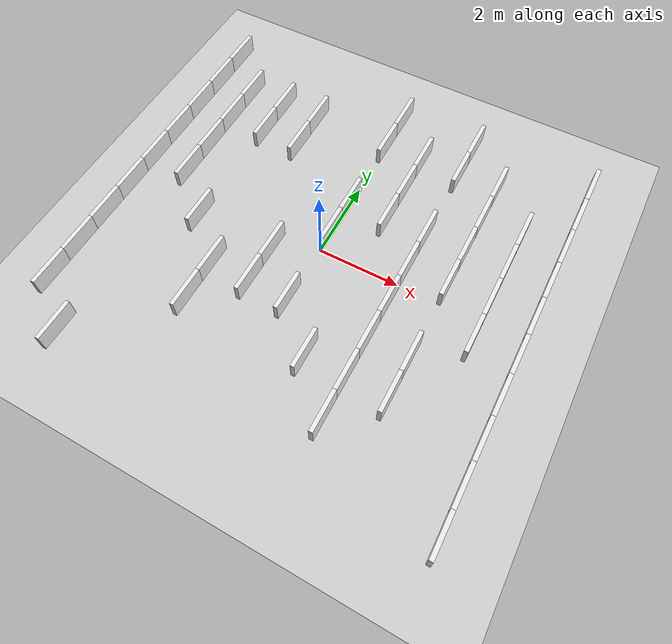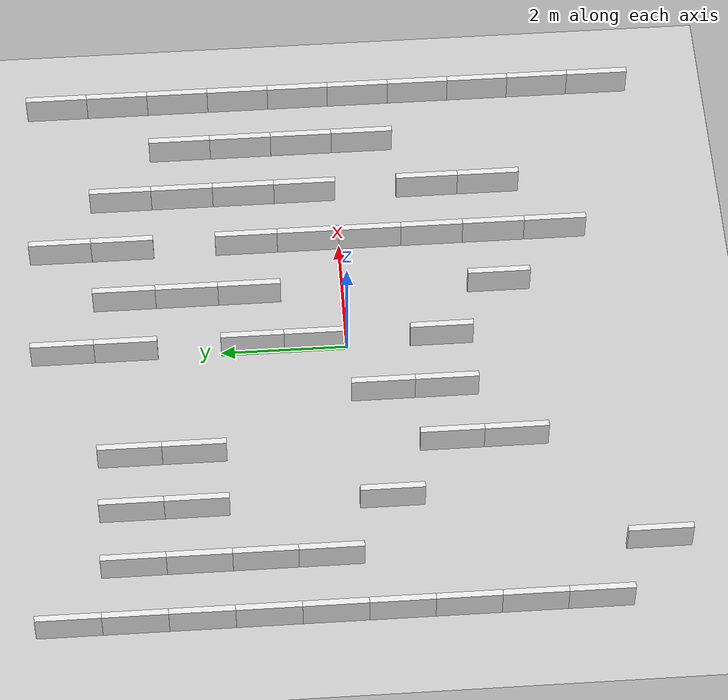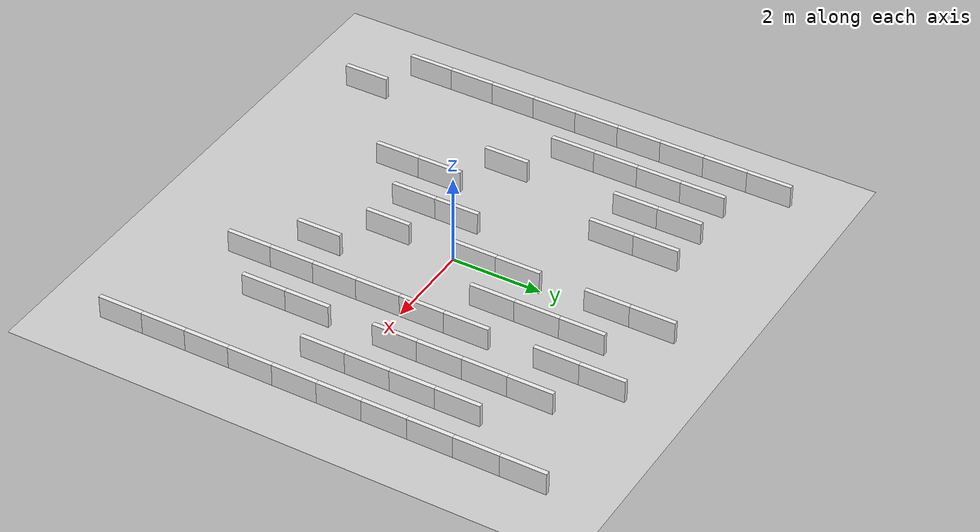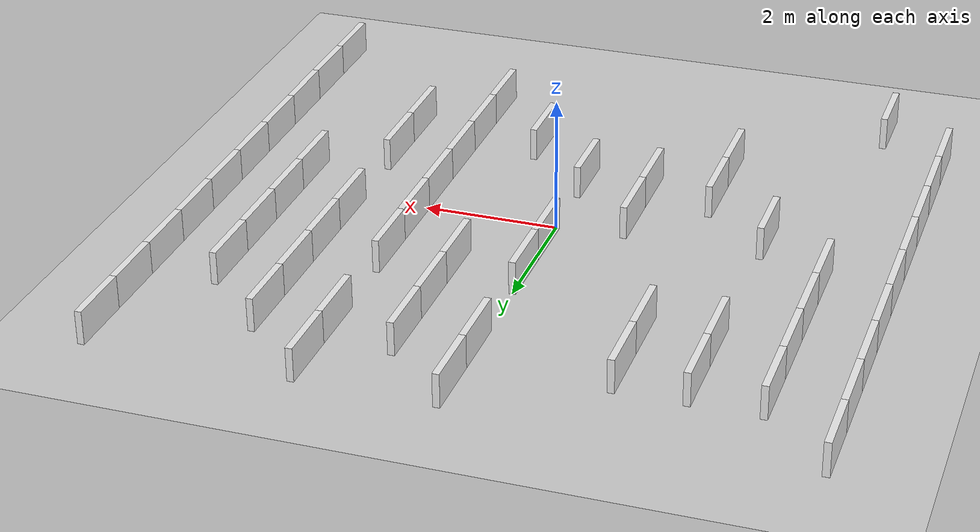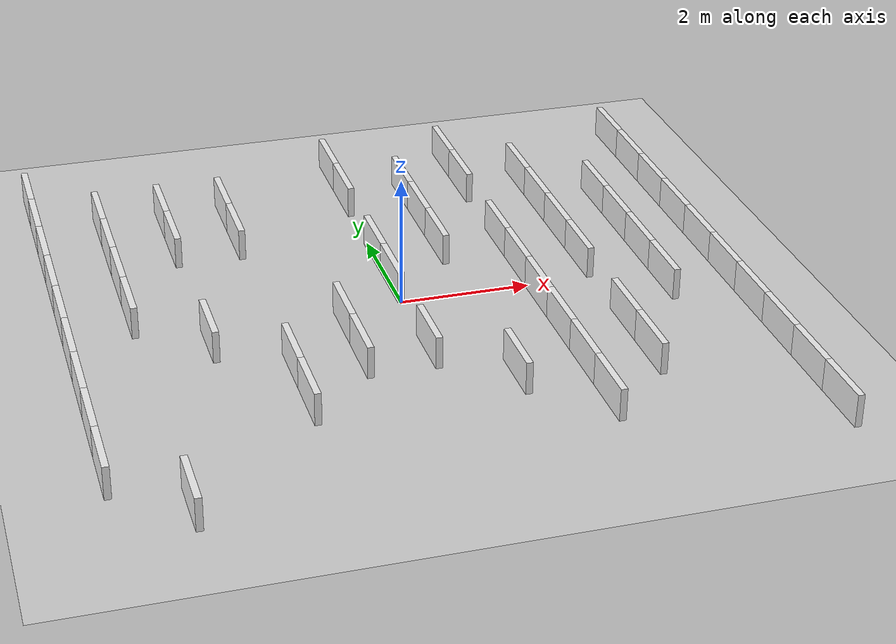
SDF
<sdf version="1.7">
 <world name="default">
  <model name="ground_plane">
   <static>1</static>
   <link name="link">
    <collision name="collision">
     <geometry><plane><normal>0 0 1</normal><size>100 100</size></plane></geometry>
     <surface><friction><ode><mu>100</mu><mu2>50</mu2></ode></friction></surface>
    </collision>
    <visual name="visual">
     <cast_shadows>0</cast_shadows>
     <geometry><plane><normal>0 0 1</normal><size>100 100</size></plane></geometry>
     <material>
      <script><uri>file://media/materials/scripts/gazebo.material</uri><name>Gazebo/Grey</name></script>
     </material>
    </visual>
   </link>
  </model>
  <model name="wall_-4_-4.5">
   <link name="wall_link_-4_-4.5">
    <collision name="wall_collision_-4_-4.5"><geometry><box><size>1 0.1 0.5</size></box></geometry></collision>
    <visual name="wall_visual_-4_-4.5">
     <geometry><box><size>1 0.1 0.5</size></box></geometry>
     <material>
      <script><uri>file://media/materials/scripts/gazebo.material</uri><name>Gazebo/White</name></script>
     </material>
    </visual>
    <pose>-4 -4.5 0.25 0 0 1.5707963267948966</pose>
   </link>
   <static>true</static>
  </model>
  <model name="wall_5_-4.5">
   <link name="wall_link_5_-4.5">
    <collision name="wall_collision_5_-4.5"><geometry><box><size>1 0.1 0.5</size></box></geometry></collision>
    <visual name="wall_visual_5_-4.5">
     <geometry><box><size>1 0.1 0.5</size></box></geometry>
     <material>
      <script><uri>file://media/materials/scripts/gazebo.material</uri><name>Gazebo/White</name></script>
     </material>
    </visual>
    <pose>5 -4.5 0.25 0 0 1.5707963267948966</pose>
   </link>
   <static>true</static>
  </model>
  <model name="wall_-5_-3.5">
   <link name="wall_link_-5_-3.5">
    <collision name="wall_collision_-5_-3.5"><geometry><box><size>1 0.1 0.5</size></box></geometry></collision>
    <visual name="wall_visual_-5_-3.5">
     <geometry><box><size>1 0.1 0.5</size></box></geometry>
     <material>
      <script><uri>file://media/materials/scripts/gazebo.material</uri><name>Gazebo/White</name></script>
     </material>
    </visual>
    <pose>-5 -3.5 0.25 0 0 1.5707963267948966</pose>
   </link>
   <static>true</static>
  </model>
  <model name="wall_2_-3.5">
   <link name="wall_link_2_-3.5">
    <collision name="wall_collision_2_-3.5"><geometry><box><size>1 0.1 0.5</size></box></geometry></collision>
    <visual name="wall_visual_2_-3.5">
     <geometry><box><size>1 0.1 0.5</size></box></geometry>
     <material>
      <script><uri>file://media/materials/scripts/gazebo.material</uri><name>Gazebo/White</name></script>
     </material>
    </visual>
    <pose>2 -3.5 0.25 0 0 1.5707963267948966</pose>
   </link>
   <static>true</static>
  </model>
  <model name="wall_5_-3.5">
   <link name="wall_link_5_-3.5">
    <collision name="wall_collision_5_-3.5"><geometry><box><size>1 0.1 0.5</size></box></geometry></collision>
    <visual name="wall_visual_5_-3.5">
     <geometry><box><size>1 0.1 0.5</size></box></geometry>
     <material>
      <script><uri>file://media/materials/scripts/gazebo.material</uri><name>Gazebo/White</name></script>
     </material>
    </visual>
    <pose>5 -3.5 0.25 0 0 1.5707963267948966</pose>
   </link>
   <static>true</static>
  </model>
  <model name="wall_-5_-2.5">
   <link name="wall_link_-5_-2.5">
    <collision name="wall_collision_-5_-2.5"><geometry><box><size>1 0.1 0.5</size></box></geometry></collision>
    <visual name="wall_visual_-5_-2.5">
     <geometry><box><size>1 0.1 0.5</size></box></geometry>
     <material>
      <script><uri>file://media/materials/scripts/gazebo.material</uri><name>Gazebo/White</name></script>
     </material>
    </visual>
    <pose>-5 -2.5 0.25 0 0 1.5707963267948966</pose>
   </link>
   <static>true</static>
  </model>
  <model name="wall_-2_-2.5">
   <link name="wall_link_-2_-2.5">
    <collision name="wall_collision_-2_-2.5"><geometry><box><size>1 0.1 0.5</size></box></geometry></collision>
    <visual name="wall_visual_-2_-2.5">
     <geometry><box><size>1 0.1 0.5</size></box></geometry>
     <material>
      <script><uri>file://media/materials/scripts/gazebo.material</uri><name>Gazebo/White</name></script>
     </material>
    </visual>
    <pose>-2 -2.5 0.25 0 0 1.5707963267948966</pose>
   </link>
   <static>true</static>
  </model>
  <model name="wall_1_-2.5">
   <link name="wall_link_1_-2.5">
    <collision name="wall_collision_1_-2.5"><geometry><box><size>1 0.1 0.5</size></box></geometry></collision>
    <visual name="wall_visual_1_-2.5">
     <geometry><box><size>1 0.1 0.5</size></box></geometry>
     <material>
      <script><uri>file://media/materials/scripts/gazebo.material</uri><name>Gazebo/White</name></script>
     </material>
    </visual>
    <pose>1 -2.5 0.25 0 0 1.5707963267948966</pose>
   </link>
   <static>true</static>
  </model>
  <model name="wall_2_-2.5">
   <link name="wall_link_2_-2.5">
    <collision name="wall_collision_2_-2.5"><geometry><box><size>1 0.1 0.5</size></box></geometry></collision>
    <visual name="wall_visual_2_-2.5">
     <geometry><box><size>1 0.1 0.5</size></box></geometry>
     <material>
      <script><uri>file://media/materials/scripts/gazebo.material</uri><name>Gazebo/White</name></script>
     </material>
    </visual>
    <pose>2 -2.5 0.25 0 0 1.5707963267948966</pose>
   </link>
   <static>true</static>
  </model>
  <model name="wall_3_-2.5">
   <link name="wall_link_3_-2.5">
    <collision name="wall_collision_3_-2.5"><geometry><box><size>1 0.1 0.5</size></box></geometry></collision>
    <visual name="wall_visual_3_-2.5">
     <geometry><box><size>1 0.1 0.5</size></box></geometry>
     <material>
      <script><uri>file://media/materials/scripts/gazebo.material</uri><name>Gazebo/White</name></script>
     </material>
    </visual>
    <pose>3 -2.5 0.25 0 0 1.5707963267948966</pose>
   </link>
   <static>true</static>
  </model>
  <model name="wall_5_-2.5">
   <link name="wall_link_5_-2.5">
    <collision name="wall_collision_5_-2.5"><geometry><box><size>1 0.1 0.5</size></box></geometry></collision>
    <visual name="wall_visual_5_-2.5">
     <geometry><box><size>1 0.1 0.5</size></box></geometry>
     <material>
      <script><uri>file://media/materials/scripts/gazebo.material</uri><name>Gazebo/White</name></script>
     </material>
    </visual>
    <pose>5 -2.5 0.25 0 0 1.5707963267948966</pose>
   </link>
   <static>true</static>
  </model>
  <model name="wall_-5_-1.5">
   <link name="wall_link_-5_-1.5">
    <collision name="wall_collision_-5_-1.5"><geometry><box><size>1 0.1 0.5</size></box></geometry></collision>
    <visual name="wall_visual_-5_-1.5">
     <geometry><box><size>1 0.1 0.5</size></box></geometry>
     <material>
      <script><uri>file://media/materials/scripts/gazebo.material</uri><name>Gazebo/White</name></script>
     </material>
    </visual>
    <pose>-5 -1.5 0.25 0 0 1.5707963267948966</pose>
   </link>
   <static>true</static>
  </model>
  <model name="wall_-2_-1.5">
   <link name="wall_link_-2_-1.5">
    <collision name="wall_collision_-2_-1.5"><geometry><box><size>1 0.1 0.5</size></box></geometry></collision>
    <visual name="wall_visual_-2_-1.5">
     <geometry><box><size>1 0.1 0.5</size></box></geometry>
     <material>
      <script><uri>file://media/materials/scripts/gazebo.material</uri><name>Gazebo/White</name></script>
     </material>
    </visual>
    <pose>-2 -1.5 0.25 0 0 1.5707963267948966</pose>
   </link>
   <static>true</static>
  </model>
  <model name="wall_-1_-1.5">
   <link name="wall_link_-1_-1.5">
    <collision name="wall_collision_-1_-1.5"><geometry><box><size>1 0.1 0.5</size></box></geometry></collision>
    <visual name="wall_visual_-1_-1.5">
     <geometry><box><size>1 0.1 0.5</size></box></geometry>
     <material>
      <script><uri>file://media/materials/scripts/gazebo.material</uri><name>Gazebo/White</name></script>
     </material>
    </visual>
    <pose>-1 -1.5 0.25 0 0 1.5707963267948966</pose>
   </link>
   <static>true</static>
  </model>
  <model name="wall_0_-1.5">
   <link name="wall_link_0_-1.5">
    <collision name="wall_collision_0_-1.5"><geometry><box><size>1 0.1 0.5</size></box></geometry></collision>
    <visual name="wall_visual_0_-1.5">
     <geometry><box><size>1 0.1 0.5</size></box></geometry>
     <material>
      <script><uri>file://media/materials/scripts/gazebo.material</uri><name>Gazebo/White</name></script>
     </material>
    </visual>
    <pose>0 -1.5 0.25 0 0 1.5707963267948966</pose>
   </link>
   <static>true</static>
  </model>
  <model name="wall_2_-1.5">
   <link name="wall_link_2_-1.5">
    <collision name="wall_collision_2_-1.5"><geometry><box><size>1 0.1 0.5</size></box></geometry></collision>
    <visual name="wall_visual_2_-1.5">
     <geometry><box><size>1 0.1 0.5</size></box></geometry>
     <material>
      <script><uri>file://media/materials/scripts/gazebo.material</uri><name>Gazebo/White</name></script>
     </material>
    </visual>
    <pose>2 -1.5 0.25 0 0 1.5707963267948966</pose>
   </link>
   <static>true</static>
  </model>
  <model name="wall_3_-1.5">
   <link name="wall_link_3_-1.5">
    <collision name="wall_collision_3_-1.5"><geometry><box><size>1 0.1 0.5</size></box></geometry></collision>
    <visual name="wall_visual_3_-1.5">
     <geometry><box><size>1 0.1 0.5</size></box></geometry>
     <material>
      <script><uri>file://media/materials/scripts/gazebo.material</uri><name>Gazebo/White</name></script>
     </material>
    </visual>
    <pose>3 -1.5 0.25 0 0 1.5707963267948966</pose>
   </link>
   <static>true</static>
  </model>
  <model name="wall_5_-1.5">
   <link name="wall_link_5_-1.5">
    <collision name="wall_collision_5_-1.5"><geometry><box><size>1 0.1 0.5</size></box></geometry></collision>
    <visual name="wall_visual_5_-1.5">
     <geometry><box><size>1 0.1 0.5</size></box></geometry>
     <material>
      <script><uri>file://media/materials/scripts/gazebo.material</uri><name>Gazebo/White</name></script>
     </material>
    </visual>
    <pose>5 -1.5 0.25 0 0 1.5707963267948966</pose>
   </link>
   <static>true</static>
  </model>
  <model name="wall_-5_-0.5">
   <link name="wall_link_-5_-0.5">
    <collision name="wall_collision_-5_-0.5"><geometry><box><size>1 0.1 0.5</size></box></geometry></collision>
    <visual name="wall_visual_-5_-0.5">
     <geometry><box><size>1 0.1 0.5</size></box></geometry>
     <material>
      <script><uri>file://media/materials/scripts/gazebo.material</uri><name>Gazebo/White</name></script>
     </material>
    </visual>
    <pose>-5 -0.5 0.25 0 0 1.5707963267948966</pose>
   </link>
   <static>true</static>
  </model>
  <model name="wall_-3_-0.5">
   <link name="wall_link_-3_-0.5">
    <collision name="wall_collision_-3_-0.5"><geometry><box><size>1 0.1 0.5</size></box></geometry></collision>
    <visual name="wall_visual_-3_-0.5">
     <geometry><box><size>1 0.1 0.5</size></box></geometry>
     <material>
      <script><uri>file://media/materials/scripts/gazebo.material</uri><name>Gazebo/White</name></script>
     </material>
    </visual>
    <pose>-3 -0.5 0.25 0 0 1.5707963267948966</pose>
   </link>
   <static>true</static>
  </model>
  <model name="wall_-1_-0.5">
   <link name="wall_link_-1_-0.5">
    <collision name="wall_collision_-1_-0.5"><geometry><box><size>1 0.1 0.5</size></box></geometry></collision>
    <visual name="wall_visual_-1_-0.5">
     <geometry><box><size>1 0.1 0.5</size></box></geometry>
     <material>
      <script><uri>file://media/materials/scripts/gazebo.material</uri><name>Gazebo/White</name></script>
     </material>
    </visual>
    <pose>-1 -0.5 0.25 0 0 1.5707963267948966</pose>
   </link>
   <static>true</static>
  </model>
  <model name="wall_2_-0.5">
   <link name="wall_link_2_-0.5">
    <collision name="wall_collision_2_-0.5"><geometry><box><size>1 0.1 0.5</size></box></geometry></collision>
    <visual name="wall_visual_2_-0.5">
     <geometry><box><size>1 0.1 0.5</size></box></geometry>
     <material>
      <script><uri>file://media/materials/scripts/gazebo.material</uri><name>Gazebo/White</name></script>
     </material>
    </visual>
    <pose>2 -0.5 0.25 0 0 1.5707963267948966</pose>
   </link>
   <static>true</static>
  </model>
  <model name="wall_4_-0.5">
   <link name="wall_link_4_-0.5">
    <collision name="wall_collision_4_-0.5"><geometry><box><size>1 0.1 0.5</size></box></geometry></collision>
    <visual name="wall_visual_4_-0.5">
     <geometry><box><size>1 0.1 0.5</size></box></geometry>
     <material>
      <script><uri>file://media/materials/scripts/gazebo.material</uri><name>Gazebo/White</name></script>
     </material>
    </visual>
    <pose>4 -0.5 0.25 0 0 1.5707963267948966</pose>
   </link>
   <static>true</static>
  </model>
  <model name="wall_5_-0.5">
   <link name="wall_link_5_-0.5">
    <collision name="wall_collision_5_-0.5"><geometry><box><size>1 0.1 0.5</size></box></geometry></collision>
    <visual name="wall_visual_5_-0.5">
     <geometry><box><size>1 0.1 0.5</size></box></geometry>
     <material>
      <script><uri>file://media/materials/scripts/gazebo.material</uri><name>Gazebo/White</name></script>
     </material>
    </visual>
    <pose>5 -0.5 0.25 0 0 1.5707963267948966</pose>
   </link>
   <static>true</static>
  </model>
  <model name="wall_-5_0.5">
   <link name="wall_link_-5_0.5">
    <collision name="wall_collision_-5_0.5"><geometry><box><size>1 0.1 0.5</size></box></geometry></collision>
    <visual name="wall_visual_-5_0.5">
     <geometry><box><size>1 0.1 0.5</size></box></geometry>
     <material>
      <script><uri>file://media/materials/scripts/gazebo.material</uri><name>Gazebo/White</name></script>
     </material>
    </visual>
    <pose>-5 0.5 0.25 0 0 1.5707963267948966</pose>
   </link>
   <static>true</static>
  </model>
  <model name="wall_-4_0.5">
   <link name="wall_link_-4_0.5">
    <collision name="wall_collision_-4_0.5"><geometry><box><size>1 0.1 0.5</size></box></geometry></collision>
    <visual name="wall_visual_-4_0.5">
     <geometry><box><size>1 0.1 0.5</size></box></geometry>
     <material>
      <script><uri>file://media/materials/scripts/gazebo.material</uri><name>Gazebo/White</name></script>
     </material>
    </visual>
    <pose>-4 0.5 0.25 0 0 1.5707963267948966</pose>
   </link>
   <static>true</static>
  </model>
  <model name="wall_0_0.5">
   <link name="wall_link_0_0.5">
    <collision name="wall_collision_0_0.5"><geometry><box><size>1 0.1 0.5</size></box></geometry></collision>
    <visual name="wall_visual_0_0.5">
     <geometry><box><size>1 0.1 0.5</size></box></geometry>
     <material>
      <script><uri>file://media/materials/scripts/gazebo.material</uri><name>Gazebo/White</name></script>
     </material>
    </visual>
    <pose>0 0.5 0.25 0 0 1.5707963267948966</pose>
   </link>
   <static>true</static>
  </model>
  <model name="wall_2_0.5">
   <link name="wall_link_2_0.5">
    <collision name="wall_collision_2_0.5"><geometry><box><size>1 0.1 0.5</size></box></geometry></collision>
    <visual name="wall_visual_2_0.5">
     <geometry><box><size>1 0.1 0.5</size></box></geometry>
     <material>
      <script><uri>file://media/materials/scripts/gazebo.material</uri><name>Gazebo/White</name></script>
     </material>
    </visual>
    <pose>2 0.5 0.25 0 0 1.5707963267948966</pose>
   </link>
   <static>true</static>
  </model>
  <model name="wall_3_0.5">
   <link name="wall_link_3_0.5">
    <collision name="wall_collision_3_0.5"><geometry><box><size>1 0.1 0.5</size></box></geometry></collision>
    <visual name="wall_visual_3_0.5">
     <geometry><box><size>1 0.1 0.5</size></box></geometry>
     <material>
      <script><uri>file://media/materials/scripts/gazebo.material</uri><name>Gazebo/White</name></script>
     </material>
    </visual>
    <pose>3 0.5 0.25 0 0 1.5707963267948966</pose>
   </link>
   <static>true</static>
  </model>
  <model name="wall_4_0.5">
   <link name="wall_link_4_0.5">
    <collision name="wall_collision_4_0.5"><geometry><box><size>1 0.1 0.5</size></box></geometry></collision>
    <visual name="wall_visual_4_0.5">
     <geometry><box><size>1 0.1 0.5</size></box></geometry>
     <material>
      <script><uri>file://media/materials/scripts/gazebo.material</uri><name>Gazebo/White</name></script>
     </material>
    </visual>
    <pose>4 0.5 0.25 0 0 1.5707963267948966</pose>
   </link>
   <static>true</static>
  </model>
  <model name="wall_5_0.5">
   <link name="wall_link_5_0.5">
    <collision name="wall_collision_5_0.5"><geometry><box><size>1 0.1 0.5</size></box></geometry></collision>
    <visual name="wall_visual_5_0.5">
     <geometry><box><size>1 0.1 0.5</size></box></geometry>
     <material>
      <script><uri>file://media/materials/scripts/gazebo.material</uri><name>Gazebo/White</name></script>
     </material>
    </visual>
    <pose>5 0.5 0.25 0 0 1.5707963267948966</pose>
   </link>
   <static>true</static>
  </model>
  <model name="wall_-5_1.5">
   <link name="wall_link_-5_1.5">
    <collision name="wall_collision_-5_1.5"><geometry><box><size>1 0.1 0.5</size></box></geometry></collision>
    <visual name="wall_visual_-5_1.5">
     <geometry><box><size>1 0.1 0.5</size></box></geometry>
     <material>
      <script><uri>file://media/materials/scripts/gazebo.material</uri><name>Gazebo/White</name></script>
     </material>
    </visual>
    <pose>-5 1.5 0.25 0 0 1.5707963267948966</pose>
   </link>
   <static>true</static>
  </model>
  <model name="wall_-4_1.5">
   <link name="wall_link_-4_1.5">
    <collision name="wall_collision_-4_1.5"><geometry><box><size>1 0.1 0.5</size></box></geometry></collision>
    <visual name="wall_visual_-4_1.5">
     <geometry><box><size>1 0.1 0.5</size></box></geometry>
     <material>
      <script><uri>file://media/materials/scripts/gazebo.material</uri><name>Gazebo/White</name></script>
     </material>
    </visual>
    <pose>-4 1.5 0.25 0 0 1.5707963267948966</pose>
   </link>
   <static>true</static>
  </model>
  <model name="wall_0_1.5">
   <link name="wall_link_0_1.5">
    <collision name="wall_collision_0_1.5"><geometry><box><size>1 0.1 0.5</size></box></geometry></collision>
    <visual name="wall_visual_0_1.5">
     <geometry><box><size>1 0.1 0.5</size></box></geometry>
     <material>
      <script><uri>file://media/materials/scripts/gazebo.material</uri><name>Gazebo/White</name></script>
     </material>
    </visual>
    <pose>0 1.5 0.25 0 0 1.5707963267948966</pose>
   </link>
   <static>true</static>
  </model>
  <model name="wall_1_1.5">
   <link name="wall_link_1_1.5">
    <collision name="wall_collision_1_1.5"><geometry><box><size>1 0.1 0.5</size></box></geometry></collision>
    <visual name="wall_visual_1_1.5">
     <geometry><box><size>1 0.1 0.5</size></box></geometry>
     <material>
      <script><uri>file://media/materials/scripts/gazebo.material</uri><name>Gazebo/White</name></script>
     </material>
    </visual>
    <pose>1 1.5 0.25 0 0 1.5707963267948966</pose>
   </link>
   <static>true</static>
  </model>
  <model name="wall_2_1.5">
   <link name="wall_link_2_1.5">
    <collision name="wall_collision_2_1.5"><geometry><box><size>1 0.1 0.5</size></box></geometry></collision>
    <visual name="wall_visual_2_1.5">
     <geometry><box><size>1 0.1 0.5</size></box></geometry>
     <material>
      <script><uri>file://media/materials/scripts/gazebo.material</uri><name>Gazebo/White</name></script>
     </material>
    </visual>
    <pose>2 1.5 0.25 0 0 1.5707963267948966</pose>
   </link>
   <static>true</static>
  </model>
  <model name="wall_3_1.5">
   <link name="wall_link_3_1.5">
    <collision name="wall_collision_3_1.5"><geometry><box><size>1 0.1 0.5</size></box></geometry></collision>
    <visual name="wall_visual_3_1.5">
     <geometry><box><size>1 0.1 0.5</size></box></geometry>
     <material>
      <script><uri>file://media/materials/scripts/gazebo.material</uri><name>Gazebo/White</name></script>
     </material>
    </visual>
    <pose>3 1.5 0.25 0 0 1.5707963267948966</pose>
   </link>
   <static>true</static>
  </model>
  <model name="wall_4_1.5">
   <link name="wall_link_4_1.5">
    <collision name="wall_collision_4_1.5"><geometry><box><size>1 0.1 0.5</size></box></geometry></collision>
    <visual name="wall_visual_4_1.5">
     <geometry><box><size>1 0.1 0.5</size></box></geometry>
     <material>
      <script><uri>file://media/materials/scripts/gazebo.material</uri><name>Gazebo/White</name></script>
     </material>
    </visual>
    <pose>4 1.5 0.25 0 0 1.5707963267948966</pose>
   </link>
   <static>true</static>
  </model>
  <model name="wall_5_1.5">
   <link name="wall_link_5_1.5">
    <collision name="wall_collision_5_1.5"><geometry><box><size>1 0.1 0.5</size></box></geometry></collision>
    <visual name="wall_visual_5_1.5">
     <geometry><box><size>1 0.1 0.5</size></box></geometry>
     <material>
      <script><uri>file://media/materials/scripts/gazebo.material</uri><name>Gazebo/White</name></script>
     </material>
    </visual>
    <pose>5 1.5 0.25 0 0 1.5707963267948966</pose>
   </link>
   <static>true</static>
  </model>
  <model name="wall_-5_2.5">
   <link name="wall_link_-5_2.5">
    <collision name="wall_collision_-5_2.5"><geometry><box><size>1 0.1 0.5</size></box></geometry></collision>
    <visual name="wall_visual_-5_2.5">
     <geometry><box><size>1 0.1 0.5</size></box></geometry>
     <material>
      <script><uri>file://media/materials/scripts/gazebo.material</uri><name>Gazebo/White</name></script>
     </material>
    </visual>
    <pose>-5 2.5 0.25 0 0 1.5707963267948966</pose>
   </link>
   <static>true</static>
  </model>
  <model name="wall_-4_2.5">
   <link name="wall_link_-4_2.5">
    <collision name="wall_collision_-4_2.5"><geometry><box><size>1 0.1 0.5</size></box></geometry></collision>
    <visual name="wall_visual_-4_2.5">
     <geometry><box><size>1 0.1 0.5</size></box></geometry>
     <material>
      <script><uri>file://media/materials/scripts/gazebo.material</uri><name>Gazebo/White</name></script>
     </material>
    </visual>
    <pose>-4 2.5 0.25 0 0 1.5707963267948966</pose>
   </link>
   <static>true</static>
  </model>
  <model name="wall_-3_2.5">
   <link name="wall_link_-3_2.5">
    <collision name="wall_collision_-3_2.5"><geometry><box><size>1 0.1 0.5</size></box></geometry></collision>
    <visual name="wall_visual_-3_2.5">
     <geometry><box><size>1 0.1 0.5</size></box></geometry>
     <material>
      <script><uri>file://media/materials/scripts/gazebo.material</uri><name>Gazebo/White</name></script>
     </material>
    </visual>
    <pose>-3 2.5 0.25 0 0 1.5707963267948966</pose>
   </link>
   <static>true</static>
  </model>
  <model name="wall_-2_2.5">
   <link name="wall_link_-2_2.5">
    <collision name="wall_collision_-2_2.5"><geometry><box><size>1 0.1 0.5</size></box></geometry></collision>
    <visual name="wall_visual_-2_2.5">
     <geometry><box><size>1 0.1 0.5</size></box></geometry>
     <material>
      <script><uri>file://media/materials/scripts/gazebo.material</uri><name>Gazebo/White</name></script>
     </material>
    </visual>
    <pose>-2 2.5 0.25 0 0 1.5707963267948966</pose>
   </link>
   <static>true</static>
  </model>
  <model name="wall_1_2.5">
   <link name="wall_link_1_2.5">
    <collision name="wall_collision_1_2.5"><geometry><box><size>1 0.1 0.5</size></box></geometry></collision>
    <visual name="wall_visual_1_2.5">
     <geometry><box><size>1 0.1 0.5</size></box></geometry>
     <material>
      <script><uri>file://media/materials/scripts/gazebo.material</uri><name>Gazebo/White</name></script>
     </material>
    </visual>
    <pose>1 2.5 0.25 0 0 1.5707963267948966</pose>
   </link>
   <static>true</static>
  </model>
  <model name="wall_3_2.5">
   <link name="wall_link_3_2.5">
    <collision name="wall_collision_3_2.5"><geometry><box><size>1 0.1 0.5</size></box></geometry></collision>
    <visual name="wall_visual_3_2.5">
     <geometry><box><size>1 0.1 0.5</size></box></geometry>
     <material>
      <script><uri>file://media/materials/scripts/gazebo.material</uri><name>Gazebo/White</name></script>
     </material>
    </visual>
    <pose>3 2.5 0.25 0 0 1.5707963267948966</pose>
   </link>
   <static>true</static>
  </model>
  <model name="wall_4_2.5">
   <link name="wall_link_4_2.5">
    <collision name="wall_collision_4_2.5"><geometry><box><size>1 0.1 0.5</size></box></geometry></collision>
    <visual name="wall_visual_4_2.5">
     <geometry><box><size>1 0.1 0.5</size></box></geometry>
     <material>
      <script><uri>file://media/materials/scripts/gazebo.material</uri><name>Gazebo/White</name></script>
     </material>
    </visual>
    <pose>4 2.5 0.25 0 0 1.5707963267948966</pose>
   </link>
   <static>true</static>
  </model>
  <model name="wall_5_2.5">
   <link name="wall_link_5_2.5">
    <collision name="wall_collision_5_2.5"><geometry><box><size>1 0.1 0.5</size></box></geometry></collision>
    <visual name="wall_visual_5_2.5">
     <geometry><box><size>1 0.1 0.5</size></box></geometry>
     <material>
      <script><uri>file://media/materials/scripts/gazebo.material</uri><name>Gazebo/White</name></script>
     </material>
    </visual>
    <pose>5 2.5 0.25 0 0 1.5707963267948966</pose>
   </link>
   <static>true</static>
  </model>
  <model name="wall_-5_3.5">
   <link name="wall_link_-5_3.5">
    <collision name="wall_collision_-5_3.5"><geometry><box><size>1 0.1 0.5</size></box></geometry></collision>
    <visual name="wall_visual_-5_3.5">
     <geometry><box><size>1 0.1 0.5</size></box></geometry>
     <material>
      <script><uri>file://media/materials/scripts/gazebo.material</uri><name>Gazebo/White</name></script>
     </material>
    </visual>
    <pose>-5 3.5 0.25 0 0 1.5707963267948966</pose>
   </link>
   <static>true</static>
  </model>
  <model name="wall_-4_3.5">
   <link name="wall_link_-4_3.5">
    <collision name="wall_collision_-4_3.5"><geometry><box><size>1 0.1 0.5</size></box></geometry></collision>
    <visual name="wall_visual_-4_3.5">
     <geometry><box><size>1 0.1 0.5</size></box></geometry>
     <material>
      <script><uri>file://media/materials/scripts/gazebo.material</uri><name>Gazebo/White</name></script>
     </material>
    </visual>
    <pose>-4 3.5 0.25 0 0 1.5707963267948966</pose>
   </link>
   <static>true</static>
  </model>
  <model name="wall_-3_3.5">
   <link name="wall_link_-3_3.5">
    <collision name="wall_collision_-3_3.5"><geometry><box><size>1 0.1 0.5</size></box></geometry></collision>
    <visual name="wall_visual_-3_3.5">
     <geometry><box><size>1 0.1 0.5</size></box></geometry>
     <material>
      <script><uri>file://media/materials/scripts/gazebo.material</uri><name>Gazebo/White</name></script>
     </material>
    </visual>
    <pose>-3 3.5 0.25 0 0 1.5707963267948966</pose>
   </link>
   <static>true</static>
  </model>
  <model name="wall_-2_3.5">
   <link name="wall_link_-2_3.5">
    <collision name="wall_collision_-2_3.5"><geometry><box><size>1 0.1 0.5</size></box></geometry></collision>
    <visual name="wall_visual_-2_3.5">
     <geometry><box><size>1 0.1 0.5</size></box></geometry>
     <material>
      <script><uri>file://media/materials/scripts/gazebo.material</uri><name>Gazebo/White</name></script>
     </material>
    </visual>
    <pose>-2 3.5 0.25 0 0 1.5707963267948966</pose>
   </link>
   <static>true</static>
  </model>
  <model name="wall_0_3.5">
   <link name="wall_link_0_3.5">
    <collision name="wall_collision_0_3.5"><geometry><box><size>1 0.1 0.5</size></box></geometry></collision>
    <visual name="wall_visual_0_3.5">
     <geometry><box><size>1 0.1 0.5</size></box></geometry>
     <material>
      <script><uri>file://media/materials/scripts/gazebo.material</uri><name>Gazebo/White</name></script>
     </material>
    </visual>
    <pose>0 3.5 0.25 0 0 1.5707963267948966</pose>
   </link>
   <static>true</static>
  </model>
  <model name="wall_1_3.5">
   <link name="wall_link_1_3.5">
    <collision name="wall_collision_1_3.5"><geometry><box><size>1 0.1 0.5</size></box></geometry></collision>
    <visual name="wall_visual_1_3.5">
     <geometry><box><size>1 0.1 0.5</size></box></geometry>
     <material>
      <script><uri>file://media/materials/scripts/gazebo.material</uri><name>Gazebo/White</name></script>
     </material>
    </visual>
    <pose>1 3.5 0.25 0 0 1.5707963267948966</pose>
   </link>
   <static>true</static>
  </model>
  <model name="wall_2_3.5">
   <link name="wall_link_2_3.5">
    <collision name="wall_collision_2_3.5"><geometry><box><size>1 0.1 0.5</size></box></geometry></collision>
    <visual name="wall_visual_2_3.5">
     <geometry><box><size>1 0.1 0.5</size></box></geometry>
     <material>
      <script><uri>file://media/materials/scripts/gazebo.material</uri><name>Gazebo/White</name></script>
     </material>
    </visual>
    <pose>2 3.5 0.25 0 0 1.5707963267948966</pose>
   </link>
   <static>true</static>
  </model>
  <model name="wall_3_3.5">
   <link name="wall_link_3_3.5">
    <collision name="wall_collision_3_3.5"><geometry><box><size>1 0.1 0.5</size></box></geometry></collision>
    <visual name="wall_visual_3_3.5">
     <geometry><box><size>1 0.1 0.5</size></box></geometry>
     <material>
      <script><uri>file://media/materials/scripts/gazebo.material</uri><name>Gazebo/White</name></script>
     </material>
    </visual>
    <pose>3 3.5 0.25 0 0 1.5707963267948966</pose>
   </link>
   <static>true</static>
  </model>
  <model name="wall_5_3.5">
   <link name="wall_link_5_3.5">
    <collision name="wall_collision_5_3.5"><geometry><box><size>1 0.1 0.5</size></box></geometry></collision>
    <visual name="wall_visual_5_3.5">
     <geometry><box><size>1 0.1 0.5</size></box></geometry>
     <material>
      <script><uri>file://media/materials/scripts/gazebo.material</uri><name>Gazebo/White</name></script>
     </material>
    </visual>
    <pose>5 3.5 0.25 0 0 1.5707963267948966</pose>
   </link>
   <static>true</static>
  </model>
  <model name="wall_-5_4.5">
   <link name="wall_link_-5_4.5">
    <collision name="wall_collision_-5_4.5"><geometry><box><size>1 0.1 0.5</size></box></geometry></collision>
    <visual name="wall_visual_-5_4.5">
     <geometry><box><size>1 0.1 0.5</size></box></geometry>
     <material>
      <script><uri>file://media/materials/scripts/gazebo.material</uri><name>Gazebo/White</name></script>
     </material>
    </visual>
    <pose>-5 4.5 0.25 0 0 1.5707963267948966</pose>
   </link>
   <static>true</static>
  </model>
  <model name="wall_0_4.5">
   <link name="wall_link_0_4.5">
    <collision name="wall_collision_0_4.5"><geometry><box><size>1 0.1 0.5</size></box></geometry></collision>
    <visual name="wall_visual_0_4.5">
     <geometry><box><size>1 0.1 0.5</size></box></geometry>
     <material>
      <script><uri>file://media/materials/scripts/gazebo.material</uri><name>Gazebo/White</name></script>
     </material>
    </visual>
    <pose>0 4.5 0.25 0 0 1.5707963267948966</pose>
   </link>
   <static>true</static>
  </model>
  <model name="wall_2_4.5">
   <link name="wall_link_2_4.5">
    <collision name="wall_collision_2_4.5"><geometry><box><size>1 0.1 0.5</size></box></geometry></collision>
    <visual name="wall_visual_2_4.5">
     <geometry><box><size>1 0.1 0.5</size></box></geometry>
     <material>
      <script><uri>file://media/materials/scripts/gazebo.material</uri><name>Gazebo/White</name></script>
     </material>
    </visual>
    <pose>2 4.5 0.25 0 0 1.5707963267948966</pose>
   </link>
   <static>true</static>
  </model>
  <model name="wall_5_4.5">
   <link name="wall_link_5_4.5">
    <collision name="wall_collision_5_4.5"><geometry><box><size>1 0.1 0.5</size></box></geometry></collision>
    <visual name="wall_visual_5_4.5">
     <geometry><box><size>1 0.1 0.5</size></box></geometry>
     <material>
      <script><uri>file://media/materials/scripts/gazebo.material</uri><name>Gazebo/White</name></script>
     </material>
    </visual>
    <pose>5 4.5 0.25 0 0 1.5707963267948966</pose>
   </link>
   <static>true</static>
  </model>
 </world>
</sdf>
